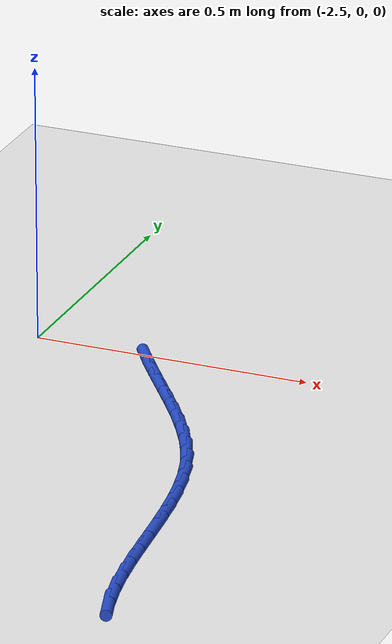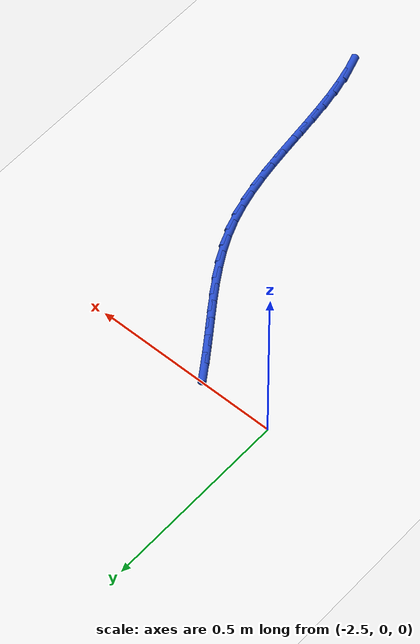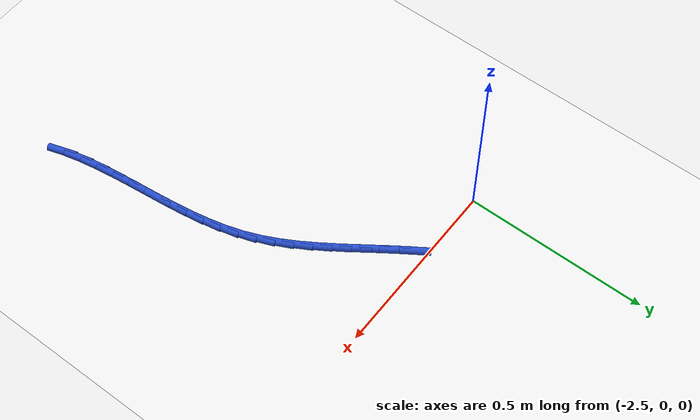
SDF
<sdf version="1.6">
 <world name="default">
  <model name="ground_plane">
   <static>1</static>
   <link name="link">
    <collision name="collision">
     <geometry><plane><normal>0 0 1</normal><size>100 100</size></plane></geometry>
     <surface><friction><ode><mu>100</mu><mu2>50</mu2></ode></friction></surface>
    </collision>
    <visual name="visual">
     <cast_shadows>0</cast_shadows>
     <geometry><plane><normal>0 0 1</normal><size>100 100</size></plane></geometry>
     <material>
      <script><uri>file://media/materials/scripts/gazebo.material</uri><name>Gazebo/WhiteGlow</name></script>
     </material>
    </visual>
   </link>
  </model>
  <model name="line">
   <link name="link_80">
    <pose>-2.2832286219957028 -0.027754036422554085 0.01 0 1.57 -0.9778101112877265</pose>
    <collision name="collision">
     <geometry><cylinder><radius>0.01</radius><length>0.08</length></cylinder></geometry>
    </collision>
    <visual name="visual">
     <material>
      <script><name>Gazebo/Blue</name><uri>file://media/materials/scripts/gazebo.material</uri></script>
     </material>
     <geometry><cylinder><radius>0.01</radius><length>0.08</length></cylinder></geometry>
    </visual>
   </link>
   <link name="link_81">
    <pose>-2.2552201906350313 -0.06931640053992877 0.01 0 1.57 -0.9598679988964594</pose>
    <collision name="collision">
     <geometry><cylinder><radius>0.01</radius><length>0.08</length></cylinder></geometry>
    </collision>
    <visual name="visual">
     <material>
      <script><name>Gazebo/Blue</name><uri>file://media/materials/scripts/gazebo.material</uri></script>
     </material>
     <geometry><cylinder><radius>0.01</radius><length>0.08</length></cylinder></geometry>
    </visual>
   </link>
   <link name="link_82">
    <pose>-2.2266159724535295 -0.11016197284422416 0.01 0 1.57 -0.9542600099068724</pose>
    <collision name="collision">
     <geometry><cylinder><radius>0.01</radius><length>0.08</length></cylinder></geometry>
    </collision>
    <visual name="visual">
     <material>
      <script><name>Gazebo/Blue</name><uri>file://media/materials/scripts/gazebo.material</uri></script>
     </material>
     <geometry><cylinder><radius>0.01</radius><length>0.08</length></cylinder></geometry>
    </visual>
   </link>
   <link name="link_83">
    <pose>-2.1979589723537565 -0.1505983888765969 0.01 0 1.57 -0.9611968856418122</pose>
    <collision name="collision">
     <geometry><cylinder><radius>0.01</radius><length>0.08</length></cylinder></geometry>
    </collision>
    <visual name="visual">
     <material>
      <script><name>Gazebo/Blue</name><uri>file://media/materials/scripts/gazebo.material</uri></script>
     </material>
     <geometry><cylinder><radius>0.01</radius><length>0.08</length></cylinder></geometry>
    </visual>
   </link>
   <link name="link_84">
    <pose>-2.169792195238266 -0.190933284178206 0.01 0 1.57 -0.9809822110516195</pose>
    <collision name="collision">
     <geometry><cylinder><radius>0.01</radius><length>0.08</length></cylinder></geometry>
    </collision>
    <visual name="visual">
     <material>
      <script><name>Gazebo/Blue</name><uri>file://media/materials/scripts/gazebo.material</uri></script>
     </material>
     <geometry><cylinder><radius>0.01</radius><length>0.08</length></cylinder></geometry>
    </visual>
   </link>
   <link name="link_85">
    <pose>-2.1426586460096146 -0.2314742942902095 0.01 0 1.57 -1.0139840036874994</pose>
    <collision name="collision">
     <geometry><cylinder><radius>0.01</radius><length>0.08</length></cylinder></geometry>
    </collision>
    <visual name="visual">
     <material>
      <script><name>Gazebo/Blue</name><uri>file://media/materials/scripts/gazebo.material</uri></script>
     </material>
     <geometry><cylinder><radius>0.01</radius><length>0.08</length></cylinder></geometry>
    </visual>
   </link>
   <link name="link_86">
    <pose>-2.1171013295703585 -0.2725290547537657 0.01 0 1.57 -1.0605364208073869</pose>
    <collision name="collision">
     <geometry><cylinder><radius>0.01</radius><length>0.08</length></cylinder></geometry>
    </collision>
    <visual name="visual">
     <material>
      <script><name>Gazebo/Blue</name><uri>file://media/materials/scripts/gazebo.material</uri></script>
     </material>
     <geometry><cylinder><radius>0.01</radius><length>0.08</length></cylinder></geometry>
    </visual>
   </link>
   <link name="link_87">
    <pose>-2.093663250823052 -0.31440520111003345 0.01 0 1.57 -1.1207591479602437</pose>
    <collision name="collision">
     <geometry><cylinder><radius>0.01</radius><length>0.08</length></cylinder></geometry>
    </collision>
    <visual name="visual">
     <material>
      <script><name>Gazebo/Blue</name><uri>file://media/materials/scripts/gazebo.material</uri></script>
     </material>
     <geometry><cylinder><radius>0.01</radius><length>0.08</length></cylinder></geometry>
    </visual>
   </link>
   <link name="link_88">
    <pose>-2.0728874146702534 -0.35741036890016953 0.01 0 1.57 -1.1942729933772807</pose>
    <collision name="collision">
     <geometry><cylinder><radius>0.01</radius><length>0.08</length></cylinder></geometry>
    </collision>
    <visual name="visual">
     <material>
      <script><name>Gazebo/Blue</name><uri>file://media/materials/scripts/gazebo.material</uri></script>
     </material>
     <geometry><cylinder><radius>0.01</radius><length>0.08</length></cylinder></geometry>
    </visual>
   </link>
   <link name="link_89">
    <pose>-2.055315884047986 -0.40185171590787255 0.01 0 1.57 -1.2730362494754968</pose>
    <collision name="collision">
     <geometry><cylinder><radius>0.01</radius><length>0.08</length></cylinder></geometry>
    </collision>
    <visual name="visual">
     <material>
      <script><name>Gazebo/Blue</name><uri>file://media/materials/scripts/gazebo.material</uri></script>
     </material>
     <geometry><cylinder><radius>0.01</radius><length>0.08</length></cylinder></geometry>
    </visual>
   </link>
   <link name="link_90">
    <pose>-2.041189450497938 -0.4478835976129128 0.01 0 1.57 -1.339370322055567</pose>
    <collision name="collision">
     <geometry><cylinder><radius>0.01</radius><length>0.08</length></cylinder></geometry>
    </collision>
    <visual name="visual">
     <material>
      <script><name>Gazebo/Blue</name><uri>file://media/materials/scripts/gazebo.material</uri></script>
     </material>
     <geometry><cylinder><radius>0.01</radius><length>0.08</length></cylinder></geometry>
    </visual>
   </link>
   <link name="link_91">
    <pose>-2.030018271830909 -0.49528979824433395 0.01 0 1.57 -1.3910523452875432</pose>
    <collision name="collision">
     <geometry><cylinder><radius>0.01</radius><length>0.08</length></cylinder></geometry>
    </collision>
    <visual name="visual">
     <material>
      <script><name>Gazebo/Blue</name><uri>file://media/materials/scripts/gazebo.material</uri></script>
     </material>
     <geometry><cylinder><radius>0.01</radius><length>0.08</length></cylinder></geometry>
    </visual>
   </link>
   <link name="link_92">
    <pose>-2.021203901689202 -0.5437990189151798 0.01 0 1.57 -1.4287542443343206</pose>
    <collision name="collision">
     <geometry><cylinder><radius>0.01</radius><length>0.08</length></cylinder></geometry>
    </collision>
    <visual name="visual">
     <material>
      <script><name>Gazebo/Blue</name><uri>file://media/materials/scripts/gazebo.material</uri></script>
     </material>
     <geometry><cylinder><radius>0.01</radius><length>0.08</length></cylinder></geometry>
    </visual>
   </link>
   <link name="link_93">
    <pose>-2.0141478937151214 -0.5931399607384914 0.01 0 1.57 -1.4531866743383088</pose>
    <collision name="collision">
     <geometry><cylinder><radius>0.01</radius><length>0.08</length></cylinder></geometry>
    </collision>
    <visual name="visual">
     <material>
      <script><name>Gazebo/Blue</name><uri>file://media/materials/scripts/gazebo.material</uri></script>
     </material>
     <geometry><cylinder><radius>0.01</radius><length>0.08</length></cylinder></geometry>
    </visual>
   </link>
   <link name="link_94">
    <pose>-2.008251801550974 -0.6430413248273128 0.01 0 1.57 -1.4649063548800945</pose>
    <collision name="collision">
     <geometry><cylinder><radius>0.01</radius><length>0.08</length></cylinder></geometry>
    </collision>
    <visual name="visual">
     <material>
      <script><name>Gazebo/Blue</name><uri>file://media/materials/scripts/gazebo.material</uri></script>
     </material>
     <geometry><cylinder><radius>0.01</radius><length>0.08</length></cylinder></geometry>
    </visual>
   </link>
   <link name="link_95">
    <pose>-2.002917178839063 -0.6932318122946868 0.01 0 1.57 -1.4642154746181058</pose>
    <collision name="collision">
     <geometry><cylinder><radius>0.01</radius><length>0.08</length></cylinder></geometry>
    </collision>
    <visual name="visual">
     <material>
      <script><name>Gazebo/Blue</name><uri>file://media/materials/scripts/gazebo.material</uri></script>
     </material>
     <geometry><cylinder><radius>0.01</radius><length>0.08</length></cylinder></geometry>
    </visual>
   </link>
   <link name="link_96">
    <pose>-1.997545579221694 -0.7434401242536572 0.01 0 1.57 -1.4511218713122471</pose>
    <collision name="collision">
     <geometry><cylinder><radius>0.01</radius><length>0.08</length></cylinder></geometry>
    </collision>
    <visual name="visual">
     <material>
      <script><name>Gazebo/Blue</name><uri>file://media/materials/scripts/gazebo.material</uri></script>
     </material>
     <geometry><cylinder><radius>0.01</radius><length>0.08</length></cylinder></geometry>
    </visual>
   </link>
   <link name="link_97">
    <pose>-1.9915385563411712 -0.7933949618172651 0.01 0 1.57 -1.4253432264457444</pose>
    <collision name="collision">
     <geometry><cylinder><radius>0.01</radius><length>0.08</length></cylinder></geometry>
    </collision>
    <visual name="visual">
     <material>
      <script><name>Gazebo/Blue</name><uri>file://media/materials/scripts/gazebo.material</uri></script>
     </material>
     <geometry><cylinder><radius>0.01</radius><length>0.08</length></cylinder></geometry>
    </visual>
   </link>
   <link name="link_98">
    <pose>-1.9842976638397993 -0.8428250260985547 0.01 0 1.57 -1.3863555950399609</pose>
    <collision name="collision">
     <geometry><cylinder><radius>0.01</radius><length>0.08</length></cylinder></geometry>
    </collision>
    <visual name="visual">
     <material>
      <script><name>Gazebo/Blue</name><uri>file://media/materials/scripts/gazebo.material</uri></script>
     </material>
     <geometry><cylinder><radius>0.01</radius><length>0.08</length></cylinder></geometry>
    </visual>
   </link>
   <link name="link_99">
    <pose>-1.975224455359884 -0.8914590182105686 0.01 0 1.57 -1.3335031657812735</pose>
    <collision name="collision">
     <geometry><cylinder><radius>0.01</radius><length>0.08</length></cylinder></geometry>
    </collision>
    <visual name="visual">
     <material>
      <script><name>Gazebo/Blue</name><uri>file://media/materials/scripts/gazebo.material</uri></script>
     </material>
     <geometry><cylinder><radius>0.01</radius><length>0.08</length></cylinder></geometry>
    </visual>
   </link>
   <link name="link_100">
    <pose>-1.9637204845437288 -0.9390256392663499 0.01 0 1.57 -1.2669470118805266</pose>
    <collision name="collision">
     <geometry><cylinder><radius>0.01</radius><length>0.08</length></cylinder></geometry>
    </collision>
    <visual name="visual">
     <material>
      <script><name>Gazebo/Blue</name><uri>file://media/materials/scripts/gazebo.material</uri></script>
     </material>
     <geometry><cylinder><radius>0.01</radius><length>0.08</length></cylinder></geometry>
    </visual>
   </link>
  </model>
 </world>
</sdf>
